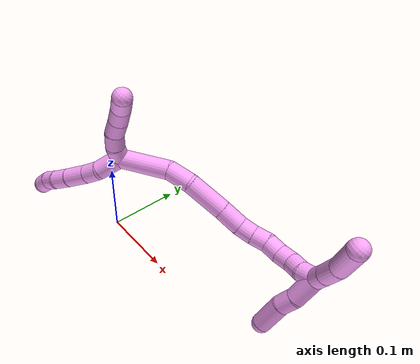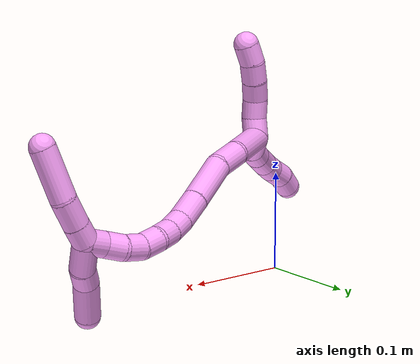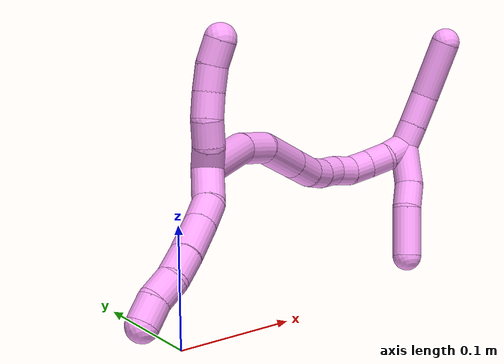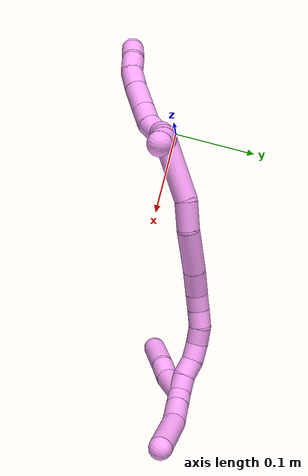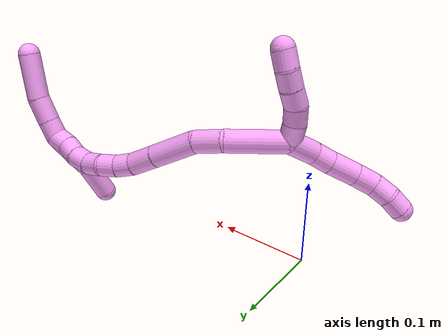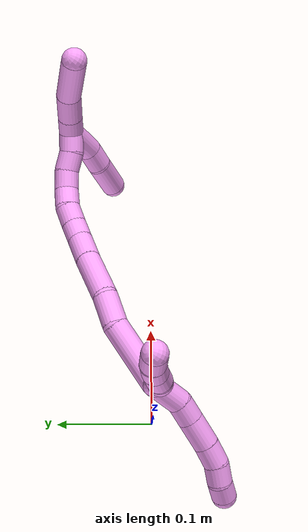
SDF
<sdf version="1.7">
 <world name="default">
  <model name="photoneo_s_sensor">
   <static>1</static>
   <pose>0 0 2 1.57079 1.57079 3.14159</pose>
   <link name="link">
    <inertial><mass>0.1</mass></inertial>
    <sensor name="sensor" type="depth">
     <update_rate>30</update_rate>
     <camera>
      <horizontal_fov>1.22</horizontal_fov>
      <image><width>1920</width><height>1200</height><format>B8G8R8</format></image>
      <clip><near>0.1</near><far>4</far></clip>
      <depth_camera><output>points</output></depth_camera>
     </camera>
     <plugin name="camera_plugin" filename="libgazebo_ros_depth_camera.so">
      <baseline>0.2</baseline>
      <alwaysOn>1</alwaysOn>
      <updateRate>0.0</updateRate>
      <cameraName>camera_ir</cameraName>
      <imageTopicName>/camera/color/image_raw</imageTopicName>
      <cameraInfoTopicName>/camera/color/camera_info</cameraInfoTopicName>
      <depthImageTopicName>/camera/depth/image_raw</depthImageTopicName>
      <depthImageCameraInfoTopicName>/camera/depth/camera_info</depthImageCameraInfoTopicName>
      <pointCloudTopicName>/camera/depth/points</pointCloudTopicName>
      <frameName>fr_optical</frameName>
      <pointCloudCutoff>0.1</pointCloudCutoff>
      <pointCloudCutoffMax>2.0</pointCloudCutoffMax>
      <distortionK1>0</distortionK1>
      <distortionK2>0</distortionK2>
      <distortionK3>0</distortionK3>
      <distortionT1>0</distortionT1>
      <distortionT2>0</distortionT2>
      <CxPrime>0</CxPrime>
      <Cx>0</Cx>
      <Cy>0</Cy>
      <focalLength>0</focalLength>
      <hackBaseline>0</hackBaseline>
     </plugin>
    </sensor>
   </link>
  </model>
  <model name="bin">
   <static>1</static>
   <link name="bottom">
    <collision name="collision-bottom">
     <pose>0 0 -0.01 0 -0 0</pose>
     <geometry><box><size>0.8 0.6 0.02</size></box></geometry>
     <surface>
      <friction><ode><mu>100</mu><mu2>100</mu2></ode></friction>
      <contact><collide_bitmask>65535</collide_bitmask></contact>
     </surface>
    </collision>
   </link>
   <link name="west_wall">
    <collision name="collision-west_wall">
     <pose>-0.41 0 0.1 0 -0 0</pose>
     <geometry><box><size>0.02 0.6 0.2</size></box></geometry>
     <surface>
      <friction><ode><mu>100</mu><mu2>100</mu2></ode></friction>
      <contact><collide_bitmask>65535</collide_bitmask></contact>
     </surface>
    </collision>
   </link>
   <link name="east_wall">
    <collision name="collision-east_wall">
     <pose>0.41 0 0.1 0 -0 0</pose>
     <geometry><box><size>0.02 0.6 0.2</size></box></geometry>
     <surface>
      <friction><ode><mu>100</mu><mu2>100</mu2></ode></friction>
      <contact><collide_bitmask>65535</collide_bitmask></contact>
     </surface>
    </collision>
   </link>
   <link name="south_wall">
    <collision name="collision-south_wall">
     <pose>0 -0.31 0.1 0 -0 0</pose>
     <geometry><box><size>0.8 0.02 0.2</size></box></geometry>
     <surface>
      <friction><ode><mu>100</mu><mu2>100</mu2></ode></friction>
      <contact><collide_bitmask>65535</collide_bitmask></contact>
     </surface>
    </collision>
   </link>
   <link name="north_wall">
    <collision name="collision-north_wall">
     <pose>0 0.31 0.1 0 -0 0</pose>
     <geometry><box><size>0.8 0.02 0.2</size></box></geometry>
     <surface>
      <friction><ode><mu>100</mu><mu2>100</mu2></ode></friction>
      <contact><collide_bitmask>65535</collide_bitmask></contact>
     </surface>
    </collision>
   </link>
  </model>
  <model name="4">
   <static>0</static>
   <link name="4">
    <collision name="collision-cylinder-e_1_2_8">
     <pose>0.003014 0.004637 0.015862 -0.284385 0.18041 -0.025896</pose>
     <geometry><cylinder><radius>0.0125</radius><length>0.033598</length></cylinder></geometry>
     <surface>
      <friction><ode><mu>1.16</mu><mu2>1.16</mu2><slip1>0</slip1><slip2>0</slip2></ode></friction>
      <contact><ode><kp>1e+06</kp><kd>1</kd><max_vel>0</max_vel><min_depth>0.001</min_depth></ode></contact>
     </surface>
    </collision>
    <visual name="visual-cylinder-e_1_2_8">
     <pose>0.003014 0.004637 0.015862 -0.284385 0.18041 -0.025896</pose>
     <geometry><cylinder><radius>0.0125</radius><length>0.033598</length></cylinder></geometry>
     <material><ambient>1 0.65098 0.996078 1</ambient></material>
    </visual>
    <collision name="collision-cylinder-e_2_8_9">
     <pose>0.006248 0.015112 0.040627 -0.580519 0.020649 -0.006168</pose>
     <geometry><cylinder><radius>0.0125</radius><length>0.021296</length></cylinder></geometry>
     <surface>
      <friction><ode><mu>1.16</mu><mu2>1.16</mu2><slip1>0</slip1><slip2>0</slip2></ode></friction>
      <contact><ode><kp>1e+06</kp><kd>1</kd><max_vel>0</max_vel><min_depth>0.001</min_depth></ode></contact>
     </surface>
    </collision>
    <visual name="visual-cylinder-e_2_8_9">
     <pose>0.006248 0.015112 0.040627 -0.580519 0.020649 -0.006168</pose>
     <geometry><cylinder><radius>0.0125</radius><length>0.021296</length></cylinder></geometry>
     <material><ambient>1 0.65098 0.996078 1</ambient></material>
    </visual>
    <collision name="collision-cylinder-e_3_9_10">
     <pose>0.007513 0.030053 0.062015 -0.629879 0.067482 -0.021992</pose>
     <geometry><cylinder><radius>0.0125</radius><length>0.030974</length></cylinder></geometry>
     <surface>
      <friction><ode><mu>1.16</mu><mu2>1.16</mu2><slip1>0</slip1><slip2>0</slip2></ode></friction>
      <contact><ode><kp>1e+06</kp><kd>1</kd><max_vel>0</max_vel><min_depth>0.001</min_depth></ode></contact>
     </surface>
    </collision>
    <visual name="visual-cylinder-e_3_9_10">
     <pose>0.007513 0.030053 0.062015 -0.629879 0.067482 -0.021992</pose>
     <geometry><cylinder><radius>0.0125</radius><length>0.030974</length></cylinder></geometry>
     <material><ambient>1 0.65098 0.996078 1</ambient></material>
    </visual>
    <collision name="collision-cylinder-e_4_10_11">
     <pose>0.008663 0.046451 0.083664 -0.6725 0.009097 -0.00318</pose>
     <geometry><cylinder><radius>0.0125</radius><length>0.023425</length></cylinder></geometry>
     <surface>
      <friction><ode><mu>1.16</mu><mu2>1.16</mu2><slip1>0</slip1><slip2>0</slip2></ode></friction>
      <contact><ode><kp>1e+06</kp><kd>1</kd><max_vel>0</max_vel><min_depth>0.001</min_depth></ode></contact>
     </surface>
    </collision>
    <visual name="visual-cylinder-e_4_10_11">
     <pose>0.008663 0.046451 0.083664 -0.6725 0.009097 -0.00318</pose>
     <geometry><cylinder><radius>0.0125</radius><length>0.023425</length></cylinder></geometry>
     <material><ambient>1 0.65098 0.996078 1</ambient></material>
    </visual>
    <collision name="collision-cylinder-e_5_11_12">
     <pose>0.006553 0.061127 0.099714 -0.819829 -0.216171 0.09423</pose>
     <geometry><cylinder><radius>0.0125</radius><length>0.020672</length></cylinder></geometry>
     <surface>
      <friction><ode><mu>1.16</mu><mu2>1.16</mu2><slip1>0</slip1><slip2>0</slip2></ode></friction>
      <contact><ode><kp>1e+06</kp><kd>1</kd><max_vel>0</max_vel><min_depth>0.001</min_depth></ode></contact>
     </surface>
    </collision>
    <visual name="visual-cylinder-e_5_11_12">
     <pose>0.006553 0.061127 0.099714 -0.819829 -0.216171 0.09423</pose>
     <geometry><cylinder><radius>0.0125</radius><length>0.020672</length></cylinder></geometry>
     <material><ambient>1 0.65098 0.996078 1</ambient></material>
    </visual>
    <collision name="collision-cylinder-e_6_12_6">
     <pose>0.00145 0.073532 0.114774 -0.551355 -0.292273 0.083224</pose>
     <geometry><cylinder><radius>0.0125</radius><length>0.020035</length></cylinder></geometry>
     <surface>
      <friction><ode><mu>1.16</mu><mu2>1.16</mu2><slip1>0</slip1><slip2>0</slip2></ode></friction>
      <contact><ode><kp>1e+06</kp><kd>1</kd><max_vel>0</max_vel><min_depth>0.001</min_depth></ode></contact>
     </surface>
    </collision>
    <visual name="visual-cylinder-e_6_12_6">
     <pose>0.00145 0.073532 0.114774 -0.551355 -0.292273 0.083224</pose>
     <geometry><cylinder><radius>0.0125</radius><length>0.020035</length></cylinder></geometry>
     <material><ambient>1 0.65098 0.996078 1</ambient></material>
    </visual>
    <collision name="collision-cylinder-e_1_2_13">
     <pose>0.008023 0.002329 -0.005497 -2.74091 0.931059 -2.3733</pose>
     <geometry><cylinder><radius>0.0125</radius><length>0.02</length></cylinder></geometry>
     <surface>
      <friction><ode><mu>1.16</mu><mu2>1.16</mu2><slip1>0</slip1><slip2>0</slip2></ode></friction>
      <contact><ode><kp>1e+06</kp><kd>1</kd><max_vel>0</max_vel><min_depth>0.001</min_depth></ode></contact>
     </surface>
    </collision>
    <visual name="visual-cylinder-e_1_2_13">
     <pose>0.008023 0.002329 -0.005497 -2.74091 0.931059 -2.3733</pose>
     <geometry><cylinder><radius>0.0125</radius><length>0.02</length></cylinder></geometry>
     <material><ambient>1 0.65098 0.996078 1</ambient></material>
    </visual>
    <collision name="collision-cylinder-e_2_13_14">
     <pose>0.022054 0.006686 -0.018725 -2.88499 0.644658 -2.40433</pose>
     <geometry><cylinder><radius>0.0125</radius><length>0.02</length></cylinder></geometry>
     <surface>
      <friction><ode><mu>1.16</mu><mu2>1.16</mu2><slip1>0</slip1><slip2>0</slip2></ode></friction>
      <contact><ode><kp>1e+06</kp><kd>1</kd><max_vel>0</max_vel><min_depth>0.001</min_depth></ode></contact>
     </surface>
    </collision>
    <visual name="visual-cylinder-e_2_13_14">
     <pose>0.022054 0.006686 -0.018725 -2.88499 0.644658 -2.40433</pose>
     <geometry><cylinder><radius>0.0125</radius><length>0.02</length></cylinder></geometry>
     <material><ambient>1 0.65098 0.996078 1</ambient></material>
    </visual>
    <collision name="collision-cylinder-e_3_14_15">
     <pose>0.032707 0.008393 -0.035307 3.1053 0.482946 2.99449</pose>
     <geometry><cylinder><radius>0.0125</radius><length>0.02</length></cylinder></geometry>
     <surface>
      <friction><ode><mu>1.16</mu><mu2>1.16</mu2><slip1>0</slip1><slip2>0</slip2></ode></friction>
      <contact><ode><kp>1e+06</kp><kd>1</kd><max_vel>0</max_vel><min_depth>0.001</min_depth></ode></contact>
     </surface>
    </collision>
    <visual name="visual-cylinder-e_3_14_15">
     <pose>0.032707 0.008393 -0.035307 3.1053 0.482946 2.99449</pose>
     <geometry><cylinder><radius>0.0125</radius><length>0.02</length></cylinder></geometry>
     <material><ambient>1 0.65098 0.996078 1</ambient></material>
    </visual>
    <collision name="collision-cylinder-e_4_15_16">
     <pose>0.042782 0.007567 -0.052539 3.08142 0.574083 2.9384</pose>
     <geometry><cylinder><radius>0.0125</radius><length>0.02</length></cylinder></geometry>
     <surface>
      <friction><ode><mu>1.16</mu><mu2>1.16</mu2><slip1>0</slip1><slip2>0</slip2></ode></friction>
      <contact><ode><kp>1e+06</kp><kd>1</kd><max_vel>0</max_vel><min_depth>0.001</min_depth></ode></contact>
     </surface>
    </collision>
    <visual name="visual-cylinder-e_4_15_16">
     <pose>0.042782 0.007567 -0.052539 3.08142 0.574083 2.9384</pose>
     <geometry><cylinder><radius>0.0125</radius><length>0.02</length></cylinder></geometry>
     <material><ambient>1 0.65098 0.996078 1</ambient></material>
    </visual>
    <collision name="collision-cylinder-e_5_16_5">
     <pose>0.054912 0.005366 -0.068149 2.91119 0.734093 2.55691</pose>
     <geometry><cylinder><radius>0.0125</radius><length>0.02</length></cylinder></geometry>
     <surface>
      <friction><ode><mu>1.16</mu><mu2>1.16</mu2><slip1>0</slip1><slip2>0</slip2></ode></friction>
      <contact><ode><kp>1e+06</kp><kd>1</kd><max_vel>0</max_vel><min_depth>0.001</min_depth></ode></contact>
     </surface>
    </collision>
    <visual name="visual-cylinder-e_5_16_5">
     <pose>0.054912 0.005366 -0.068149 2.91119 0.734093 2.55691</pose>
     <geometry><cylinder><radius>0.0125</radius><length>0.02</length></cylinder></geometry>
     <material><ambient>1 0.65098 0.996078 1</ambient></material>
    </visual>
    <collision name="collision-cylinder-e_1_2_17">
     <pose>-0.013486 -0.025603 -0.016805 2.15164 -0.414794 -0.743398</pose>
     <geometry><cylinder><radius>0.0125</radius><length>0.066926</length></cylinder></geometry>
     <surface>
      <friction><ode><mu>1.16</mu><mu2>1.16</mu2><slip1>0</slip1><slip2>0</slip2></ode></friction>
      <contact><ode><kp>1e+06</kp><kd>1</kd><max_vel>0</max_vel><min_depth>0.001</min_depth></ode></contact>
     </surface>
    </collision>
    <visual name="visual-cylinder-e_1_2_17">
     <pose>-0.013486 -0.025603 -0.016805 2.15164 -0.414794 -0.743398</pose>
     <geometry><cylinder><radius>0.0125</radius><length>0.066926</length></cylinder></geometry>
     <material><ambient>1 0.65098 0.996078 1</ambient></material>
    </visual>
    <collision name="collision-cylinder-e_2_17_18">
     <pose>-0.032314 -0.065859 -0.037377 1.82242 -0.33944 -0.435</pose>
     <geometry><cylinder><radius>0.0125</radius><length>0.032092</length></cylinder></geometry>
     <surface>
      <friction><ode><mu>1.16</mu><mu2>1.16</mu2><slip1>0</slip1><slip2>0</slip2></ode></friction>
      <contact><ode><kp>1e+06</kp><kd>1</kd><max_vel>0</max_vel><min_depth>0.001</min_depth></ode></contact>
     </surface>
    </collision>
    <visual name="visual-cylinder-e_2_17_18">
     <pose>-0.032314 -0.065859 -0.037377 1.82242 -0.33944 -0.435</pose>
     <geometry><cylinder><radius>0.0125</radius><length>0.032092</length></cylinder></geometry>
     <material><ambient>1 0.65098 0.996078 1</ambient></material>
    </visual>
    <collision name="collision-cylinder-e_3_18_19">
     <pose>-0.051213 -0.101923 -0.042 1.61072 -0.5641 -0.585813</pose>
     <geometry><cylinder><radius>0.0125</radius><length>0.05071</length></cylinder></geometry>
     <surface>
      <friction><ode><mu>1.16</mu><mu2>1.16</mu2><slip1>0</slip1><slip2>0</slip2></ode></friction>
      <contact><ode><kp>1e+06</kp><kd>1</kd><max_vel>0</max_vel><min_depth>0.001</min_depth></ode></contact>
     </surface>
    </collision>
    <visual name="visual-cylinder-e_3_18_19">
     <pose>-0.051213 -0.101923 -0.042 1.61072 -0.5641 -0.585813</pose>
     <geometry><cylinder><radius>0.0125</radius><length>0.05071</length></cylinder></geometry>
     <material><ambient>1 0.65098 0.996078 1</ambient></material>
    </visual>
    <collision name="collision-cylinder-e_4_19_20">
     <pose>-0.072324 -0.136171 -0.042867 1.57174 -0.531902 -0.532382</pose>
     <geometry><cylinder><radius>0.0125</radius><length>0.029792</length></cylinder></geometry>
     <surface>
      <friction><ode><mu>1.16</mu><mu2>1.16</mu2><slip1>0</slip1><slip2>0</slip2></ode></friction>
      <contact><ode><kp>1e+06</kp><kd>1</kd><max_vel>0</max_vel><min_depth>0.001</min_depth></ode></contact>
     </surface>
    </collision>
    <visual name="visual-cylinder-e_4_19_20">
     <pose>-0.072324 -0.136171 -0.042867 1.57174 -0.531902 -0.532382</pose>
     <geometry><cylinder><radius>0.0125</radius><length>0.029792</length></cylinder></geometry>
     <material><ambient>1 0.65098 0.996078 1</ambient></material>
    </visual>
    <collision name="collision-cylinder-e_5_20_21">
     <pose>-0.084033 -0.157945 -0.044646 1.76602 -0.427858 -0.517007</pose>
     <geometry><cylinder><radius>0.0125</radius><length>0.020024</length></cylinder></geometry>
     <surface>
      <friction><ode><mu>1.16</mu><mu2>1.16</mu2><slip1>0</slip1><slip2>0</slip2></ode></friction>
      <contact><ode><kp>1e+06</kp><kd>1</kd><max_vel>0</max_vel><min_depth>0.001</min_depth></ode></contact>
     </surface>
    </collision>
    <visual name="visual-cylinder-e_5_20_21">
     <pose>-0.084033 -0.157945 -0.044646 1.76602 -0.427858 -0.517007</pose>
     <geometry><cylinder><radius>0.0125</radius><length>0.020024</length></cylinder></geometry>
     <material><ambient>1 0.65098 0.996078 1</ambient></material>
    </visual>
    <collision name="collision-cylinder-e_6_21_22">
     <pose>-0.091176 -0.175945 -0.049625 1.91135 -0.301335 -0.423296</pose>
     <geometry><cylinder><radius>0.0125</radius><length>0.020139</length></cylinder></geometry>
     <surface>
      <friction><ode><mu>1.16</mu><mu2>1.16</mu2><slip1>0</slip1><slip2>0</slip2></ode></friction>
      <contact><ode><kp>1e+06</kp><kd>1</kd><max_vel>0</max_vel><min_depth>0.001</min_depth></ode></contact>
     </surface>
    </collision>
    <visual name="visual-cylinder-e_6_21_22">
     <pose>-0.091176 -0.175945 -0.049625 1.91135 -0.301335 -0.423296</pose>
     <geometry><cylinder><radius>0.0125</radius><length>0.020139</length></cylinder></geometry>
     <material><ambient>1 0.65098 0.996078 1</ambient></material>
    </visual>
    <collision name="collision-cylinder-e_7_22_23">
     <pose>-0.095686 -0.194878 -0.053877 1.67585 -0.152177 -0.16899</pose>
     <geometry><cylinder><radius>0.0125</radius><length>0.020079</length></cylinder></geometry>
     <surface>
      <friction><ode><mu>1.16</mu><mu2>1.16</mu2><slip1>0</slip1><slip2>0</slip2></ode></friction>
      <contact><ode><kp>1e+06</kp><kd>1</kd><max_vel>0</max_vel><min_depth>0.001</min_depth></ode></contact>
     </surface>
    </collision>
    <visual name="visual-cylinder-e_7_22_23">
     <pose>-0.095686 -0.194878 -0.053877 1.67585 -0.152177 -0.16899</pose>
     <geometry><cylinder><radius>0.0125</radius><length>0.020079</length></cylinder></geometry>
     <material><ambient>1 0.65098 0.996078 1</ambient></material>
    </visual>
    <collision name="collision-cylinder-e_8_23_24">
     <pose>-0.09599 -0.214279 -0.057779 1.8624 0.121757 0.163508</pose>
     <geometry><cylinder><radius>0.0125</radius><length>0.020054</length></cylinder></geometry>
     <surface>
      <friction><ode><mu>1.16</mu><mu2>1.16</mu2><slip1>0</slip1><slip2>0</slip2></ode></friction>
      <contact><ode><kp>1e+06</kp><kd>1</kd><max_vel>0</max_vel><min_depth>0.001</min_depth></ode></contact>
     </surface>
    </collision>
    <visual name="visual-cylinder-e_8_23_24">
     <pose>-0.09599 -0.214279 -0.057779 1.8624 0.121757 0.163508</pose>
     <geometry><cylinder><radius>0.0125</radius><length>0.020054</length></cylinder></geometry>
     <material><ambient>1 0.65098 0.996078 1</ambient></material>
    </visual>
    <collision name="collision-cylinder-e_9_24_25">
     <pose>-0.09072 -0.232697 -0.062896 1.81935 0.416237 0.530163</pose>
     <geometry><cylinder><radius>0.0125</radius><length>0.020045</length></cylinder></geometry>
     <surface>
      <friction><ode><mu>1.16</mu><mu2>1.16</mu2><slip1>0</slip1><slip2>0</slip2></ode></friction>
      <contact><ode><kp>1e+06</kp><kd>1</kd><max_vel>0</max_vel><min_depth>0.001</min_depth></ode></contact>
     </surface>
    </collision>
    <visual name="visual-cylinder-e_9_24_25">
     <pose>-0.09072 -0.232697 -0.062896 1.81935 0.416237 0.530163</pose>
     <geometry><cylinder><radius>0.0125</radius><length>0.020045</length></cylinder></geometry>
     <material><ambient>1 0.65098 0.996078 1</ambient></material>
    </visual>
    <collision name="collision-cylinder-e_10_25_1">
     <pose>-0.084514 -0.250523 -0.069251 2.00081 0.215526 0.334127</pose>
     <geometry><cylinder><radius>0.0125</radius><length>0.020138</length></cylinder></geometry>
     <surface>
      <friction><ode><mu>1.16</mu><mu2>1.16</mu2><slip1>0</slip1><slip2>0</slip2></ode></friction>
      <contact><ode><kp>1e+06</kp><kd>1</kd><max_vel>0</max_vel><min_depth>0.001</min_depth></ode></contact>
     </surface>
    </collision>
    <visual name="visual-cylinder-e_10_25_1">
     <pose>-0.084514 -0.250523 -0.069251 2.00081 0.215526 0.334127</pose>
     <geometry><cylinder><radius>0.0125</radius><length>0.020138</length></cylinder></geometry>
     <material><ambient>1 0.65098 0.996078 1</ambient></material>
    </visual>
    <collision name="collision-cylinder-e_1_1_26">
     <pose>-0.076518 -0.262899 -0.081083 2.72348 0.604459 1.94661</pose>
     <geometry><cylinder><radius>0.0125</radius><length>0.020564</length></cylinder></geometry>
     <surface>
      <friction><ode><mu>1.16</mu><mu2>1.16</mu2><slip1>0</slip1><slip2>0</slip2></ode></friction>
      <contact><ode><kp>1e+06</kp><kd>1</kd><max_vel>0</max_vel><min_depth>0.001</min_depth></ode></contact>
     </surface>
    </collision>
    <visual name="visual-cylinder-e_1_1_26">
     <pose>-0.076518 -0.262899 -0.081083 2.72348 0.604459 1.94661</pose>
     <geometry><cylinder><radius>0.0125</radius><length>0.020564</length></cylinder></geometry>
     <material><ambient>1 0.65098 0.996078 1</ambient></material>
    </visual>
    <collision name="collision-cylinder-e_2_26_27">
     <pose>-0.062377 -0.270563 -0.099534 2.76581 0.624048 2.07634</pose>
     <geometry><cylinder><radius>0.0125</radius><length>0.0284</length></cylinder></geometry>
     <surface>
      <friction><ode><mu>1.16</mu><mu2>1.16</mu2><slip1>0</slip1><slip2>0</slip2></ode></friction>
      <contact><ode><kp>1e+06</kp><kd>1</kd><max_vel>0</max_vel><min_depth>0.001</min_depth></ode></contact>
     </surface>
    </collision>
    <visual name="visual-cylinder-e_2_26_27">
     <pose>-0.062377 -0.270563 -0.099534 2.76581 0.624048 2.07634</pose>
     <geometry><cylinder><radius>0.0125</radius><length>0.0284</length></cylinder></geometry>
     <material><ambient>1 0.65098 0.996078 1</ambient></material>
    </visual>
    <collision name="collision-cylinder-e_3_27_4">
     <pose>-0.035338 -0.278708 -0.127123 2.91347 0.824849 2.62941</pose>
     <geometry><cylinder><radius>0.0125</radius><length>0.051036</length></cylinder></geometry>
     <surface>
      <friction><ode><mu>1.16</mu><mu2>1.16</mu2><slip1>0</slip1><slip2>0</slip2></ode></friction>
      <contact><ode><kp>1e+06</kp><kd>1</kd><max_vel>0</max_vel><min_depth>0.001</min_depth></ode></contact>
     </surface>
    </collision>
    <visual name="visual-cylinder-e_3_27_4">
     <pose>-0.035338 -0.278708 -0.127123 2.91347 0.824849 2.62941</pose>
     <geometry><cylinder><radius>0.0125</radius><length>0.051036</length></cylinder></geometry>
     <material><ambient>1 0.65098 0.996078 1</ambient></material>
    </visual>
    <collision name="collision-cylinder-e_1_1_28">
     <pose>-0.085502 -0.259081 -0.055839 -0.021847 -0.177437 0.001943</pose>
     <geometry><cylinder><radius>0.0125</radius><length>0.035592</length></cylinder></geometry>
     <surface>
      <friction><ode><mu>1.16</mu><mu2>1.16</mu2><slip1>0</slip1><slip2>0</slip2></ode></friction>
      <contact><ode><kp>1e+06</kp><kd>1</kd><max_vel>0</max_vel><min_depth>0.001</min_depth></ode></contact>
     </surface>
    </collision>
    <visual name="visual-cylinder-e_1_1_28">
     <pose>-0.085502 -0.259081 -0.055839 -0.021847 -0.177437 0.001943</pose>
     <geometry><cylinder><radius>0.0125</radius><length>0.035592</length></cylinder></geometry>
     <material><ambient>1 0.65098 0.996078 1</ambient></material>
    </visual>
    <collision name="collision-cylinder-e_2_28_29">
     <pose>-0.090792 -0.255688 -0.027894 -0.280925 -0.19534 0.027706</pose>
     <geometry><cylinder><radius>0.0125</radius><length>0.022138</length></cylinder></geometry>
     <surface>
      <friction><ode><mu>1.16</mu><mu2>1.16</mu2><slip1>0</slip1><slip2>0</slip2></ode></friction>
      <contact><ode><kp>1e+06</kp><kd>1</kd><max_vel>0</max_vel><min_depth>0.001</min_depth></ode></contact>
     </surface>
    </collision>
    <visual name="visual-cylinder-e_2_28_29">
     <pose>-0.090792 -0.255688 -0.027894 -0.280925 -0.19534 0.027706</pose>
     <geometry><cylinder><radius>0.0125</radius><length>0.022138</length></cylinder></geometry>
     <material><ambient>1 0.65098 0.996078 1</ambient></material>
    </visual>
    <collision name="collision-cylinder-e_3_29_3">
     <pose>-0.099827 -0.251215 0.002467 -0.073242 -0.331912 0.012273</pose>
     <geometry><cylinder><radius>0.0125</radius><length>0.04227</length></cylinder></geometry>
     <surface>
      <friction><ode><mu>1.16</mu><mu2>1.16</mu2><slip1>0</slip1><slip2>0</slip2></ode></friction>
      <contact><ode><kp>1e+06</kp><kd>1</kd><max_vel>0</max_vel><min_depth>0.001</min_depth></ode></contact>
     </surface>
    </collision>
    <visual name="visual-cylinder-e_3_29_3">
     <pose>-0.099827 -0.251215 0.002467 -0.073242 -0.331912 0.012273</pose>
     <geometry><cylinder><radius>0.0125</radius><length>0.04227</length></cylinder></geometry>
     <material><ambient>1 0.65098 0.996078 1</ambient></material>
    </visual>
    <collision name="collision-sphere-3">
     <pose>-0.106714 -0.249753 0.022394 0 -0 0</pose>
     <geometry><sphere><radius>0.0125</radius></sphere></geometry>
     <surface>
      <friction><ode><mu>1.16</mu><mu2>1.16</mu2><slip1>0</slip1><slip2>0</slip2></ode></friction>
      <contact><ode><kp>1e+06</kp><kd>1</kd><max_vel>0</max_vel><min_depth>0.001</min_depth></ode></contact>
     </surface>
    </collision>
    <visual name="visual-sphere-3">
     <pose>-0.106714 -0.249753 0.022394 0 -0 0</pose>
     <geometry><sphere><radius>0.0125</radius></sphere></geometry>
     <material><ambient>1 0.65098 0.996078 1</ambient></material>
    </visual>
    <collision name="collision-sphere-29">
     <pose>-0.09294 -0.252677 -0.017461 0 -0 0</pose>
     <geometry><sphere><radius>0.0125</radius></sphere></geometry>
     <surface>
      <friction><ode><mu>1.16</mu><mu2>1.16</mu2><slip1>0</slip1><slip2>0</slip2></ode></friction>
      <contact><ode><kp>1e+06</kp><kd>1</kd><max_vel>0</max_vel><min_depth>0.001</min_depth></ode></contact>
     </surface>
    </collision>
    <visual name="visual-sphere-29">
     <pose>-0.09294 -0.252677 -0.017461 0 -0 0</pose>
     <geometry><sphere><radius>0.0125</radius></sphere></geometry>
     <material><ambient>1 0.65098 0.996078 1</ambient></material>
    </visual>
    <collision name="collision-sphere-28">
     <pose>-0.088643 -0.258698 -0.038327 0 -0 0</pose>
     <geometry><sphere><radius>0.0125</radius></sphere></geometry>
     <surface>
      <friction><ode><mu>1.16</mu><mu2>1.16</mu2><slip1>0</slip1><slip2>0</slip2></ode></friction>
      <contact><ode><kp>1e+06</kp><kd>1</kd><max_vel>0</max_vel><min_depth>0.001</min_depth></ode></contact>
     </surface>
    </collision>
    <visual name="visual-sphere-28">
     <pose>-0.088643 -0.258698 -0.038327 0 -0 0</pose>
     <geometry><sphere><radius>0.0125</radius></sphere></geometry>
     <material><ambient>1 0.65098 0.996078 1</ambient></material>
    </visual>
    <collision name="collision-sphere-4">
     <pose>-0.016596 -0.282625 -0.143993 0 -0 0</pose>
     <geometry><sphere><radius>0.0125</radius></sphere></geometry>
     <surface>
      <friction><ode><mu>1.16</mu><mu2>1.16</mu2><slip1>0</slip1><slip2>0</slip2></ode></friction>
      <contact><ode><kp>1e+06</kp><kd>1</kd><max_vel>0</max_vel><min_depth>0.001</min_depth></ode></contact>
     </surface>
    </collision>
    <visual name="visual-sphere-4">
     <pose>-0.016596 -0.282625 -0.143993 0 -0 0</pose>
     <geometry><sphere><radius>0.0125</radius></sphere></geometry>
     <material><ambient>1 0.65098 0.996078 1</ambient></material>
    </visual>
    <collision name="collision-sphere-27">
     <pose>-0.05408 -0.274792 -0.110253 0 -0 0</pose>
     <geometry><sphere><radius>0.0125</radius></sphere></geometry>
     <surface>
      <friction><ode><mu>1.16</mu><mu2>1.16</mu2><slip1>0</slip1><slip2>0</slip2></ode></friction>
      <contact><ode><kp>1e+06</kp><kd>1</kd><max_vel>0</max_vel><min_depth>0.001</min_depth></ode></contact>
     </surface>
    </collision>
    <visual name="visual-sphere-27">
     <pose>-0.05408 -0.274792 -0.110253 0 -0 0</pose>
     <geometry><sphere><radius>0.0125</radius></sphere></geometry>
     <material><ambient>1 0.65098 0.996078 1</ambient></material>
    </visual>
    <collision name="collision-sphere-26">
     <pose>-0.070674 -0.266334 -0.088815 0 -0 0</pose>
     <geometry><sphere><radius>0.0125</radius></sphere></geometry>
     <surface>
      <friction><ode><mu>1.16</mu><mu2>1.16</mu2><slip1>0</slip1><slip2>0</slip2></ode></friction>
      <contact><ode><kp>1e+06</kp><kd>1</kd><max_vel>0</max_vel><min_depth>0.001</min_depth></ode></contact>
     </surface>
    </collision>
    <visual name="visual-sphere-26">
     <pose>-0.070674 -0.266334 -0.088815 0 -0 0</pose>
     <geometry><sphere><radius>0.0125</radius></sphere></geometry>
     <material><ambient>1 0.65098 0.996078 1</ambient></material>
    </visual>
    <collision name="collision-sphere-1">
     <pose>-0.082361 -0.259464 -0.073352 0 -0 0</pose>
     <geometry><sphere><radius>0.0125</radius></sphere></geometry>
     <surface>
      <friction><ode><mu>1.16</mu><mu2>1.16</mu2><slip1>0</slip1><slip2>0</slip2></ode></friction>
      <contact><ode><kp>1e+06</kp><kd>1</kd><max_vel>0</max_vel><min_depth>0.001</min_depth></ode></contact>
     </surface>
    </collision>
    <visual name="visual-sphere-1">
     <pose>-0.082361 -0.259464 -0.073352 0 -0 0</pose>
     <geometry><sphere><radius>0.0125</radius></sphere></geometry>
     <material><ambient>1 0.65098 0.996078 1</ambient></material>
    </visual>
    <collision name="collision-sphere-25">
     <pose>-0.086668 -0.241582 -0.065151 0 -0 0</pose>
     <geometry><sphere><radius>0.0125</radius></sphere></geometry>
     <surface>
      <friction><ode><mu>1.16</mu><mu2>1.16</mu2><slip1>0</slip1><slip2>0</slip2></ode></friction>
      <contact><ode><kp>1e+06</kp><kd>1</kd><max_vel>0</max_vel><min_depth>0.001</min_depth></ode></contact>
     </surface>
    </collision>
    <visual name="visual-sphere-25">
     <pose>-0.086668 -0.241582 -0.065151 0 -0 0</pose>
     <geometry><sphere><radius>0.0125</radius></sphere></geometry>
     <material><ambient>1 0.65098 0.996078 1</ambient></material>
    </visual>
    <collision name="collision-sphere-24">
     <pose>-0.094773 -0.223812 -0.060641 0 -0 0</pose>
     <geometry><sphere><radius>0.0125</radius></sphere></geometry>
     <surface>
      <friction><ode><mu>1.16</mu><mu2>1.16</mu2><slip1>0</slip1><slip2>0</slip2></ode></friction>
      <contact><ode><kp>1e+06</kp><kd>1</kd><max_vel>0</max_vel><min_depth>0.001</min_depth></ode></contact>
     </surface>
    </collision>
    <visual name="visual-sphere-24">
     <pose>-0.094773 -0.223812 -0.060641 0 -0 0</pose>
     <geometry><sphere><radius>0.0125</radius></sphere></geometry>
     <material><ambient>1 0.65098 0.996078 1</ambient></material>
    </visual>
    <collision name="collision-sphere-23">
     <pose>-0.097208 -0.204747 -0.054918 0 -0 0</pose>
     <geometry><sphere><radius>0.0125</radius></sphere></geometry>
     <surface>
      <friction><ode><mu>1.16</mu><mu2>1.16</mu2><slip1>0</slip1><slip2>0</slip2></ode></friction>
      <contact><ode><kp>1e+06</kp><kd>1</kd><max_vel>0</max_vel><min_depth>0.001</min_depth></ode></contact>
     </surface>
    </collision>
    <visual name="visual-sphere-23">
     <pose>-0.097208 -0.204747 -0.054918 0 -0 0</pose>
     <geometry><sphere><radius>0.0125</radius></sphere></geometry>
     <material><ambient>1 0.65098 0.996078 1</ambient></material>
    </visual>
    <collision name="collision-sphere-22">
     <pose>-0.094164 -0.185009 -0.052837 0 -0 0</pose>
     <geometry><sphere><radius>0.0125</radius></sphere></geometry>
     <surface>
      <friction><ode><mu>1.16</mu><mu2>1.16</mu2><slip1>0</slip1><slip2>0</slip2></ode></friction>
      <contact><ode><kp>1e+06</kp><kd>1</kd><max_vel>0</max_vel><min_depth>0.001</min_depth></ode></contact>
     </surface>
    </collision>
    <visual name="visual-sphere-22">
     <pose>-0.094164 -0.185009 -0.052837 0 -0 0</pose>
     <geometry><sphere><radius>0.0125</radius></sphere></geometry>
     <material><ambient>1 0.65098 0.996078 1</ambient></material>
    </visual>
    <collision name="collision-sphere-21">
     <pose>-0.088187 -0.166882 -0.046413 0 -0 0</pose>
     <geometry><sphere><radius>0.0125</radius></sphere></geometry>
     <surface>
      <friction><ode><mu>1.16</mu><mu2>1.16</mu2><slip1>0</slip1><slip2>0</slip2></ode></friction>
      <contact><ode><kp>1e+06</kp><kd>1</kd><max_vel>0</max_vel><min_depth>0.001</min_depth></ode></contact>
     </surface>
    </collision>
    <visual name="visual-sphere-21">
     <pose>-0.088187 -0.166882 -0.046413 0 -0 0</pose>
     <geometry><sphere><radius>0.0125</radius></sphere></geometry>
     <material><ambient>1 0.65098 0.996078 1</ambient></material>
    </visual>
    <collision name="collision-sphere-12">
     <pose>0.004336 0.068507 0.106603 0 -0 0</pose>
     <geometry><sphere><radius>0.0125</radius></sphere></geometry>
     <surface>
      <friction><ode><mu>1.16</mu><mu2>1.16</mu2><slip1>0</slip1><slip2>0</slip2></ode></friction>
      <contact><ode><kp>1e+06</kp><kd>1</kd><max_vel>0</max_vel><min_depth>0.001</min_depth></ode></contact>
     </surface>
    </collision>
    <visual name="visual-sphere-12">
     <pose>0.004336 0.068507 0.106603 0 -0 0</pose>
     <geometry><sphere><radius>0.0125</radius></sphere></geometry>
     <material><ambient>1 0.65098 0.996078 1</ambient></material>
    </visual>
    <collision name="collision-sphere-11">
     <pose>0.00877 0.053746 0.092825 0 -0 0</pose>
     <geometry><sphere><radius>0.0125</radius></sphere></geometry>
     <surface>
      <friction><ode><mu>1.16</mu><mu2>1.16</mu2><slip1>0</slip1><slip2>0</slip2></ode></friction>
      <contact><ode><kp>1e+06</kp><kd>1</kd><max_vel>0</max_vel><min_depth>0.001</min_depth></ode></contact>
     </surface>
    </collision>
    <visual name="visual-sphere-11">
     <pose>0.00877 0.053746 0.092825 0 -0 0</pose>
     <geometry><sphere><radius>0.0125</radius></sphere></geometry>
     <material><ambient>1 0.65098 0.996078 1</ambient></material>
    </visual>
    <collision name="collision-sphere-10">
     <pose>0.008557 0.039155 0.074502 0 -0 0</pose>
     <geometry><sphere><radius>0.0125</radius></sphere></geometry>
     <surface>
      <friction><ode><mu>1.16</mu><mu2>1.16</mu2><slip1>0</slip1><slip2>0</slip2></ode></friction>
      <contact><ode><kp>1e+06</kp><kd>1</kd><max_vel>0</max_vel><min_depth>0.001</min_depth></ode></contact>
     </surface>
    </collision>
    <visual name="visual-sphere-10">
     <pose>0.008557 0.039155 0.074502 0 -0 0</pose>
     <geometry><sphere><radius>0.0125</radius></sphere></geometry>
     <material><ambient>1 0.65098 0.996078 1</ambient></material>
    </visual>
    <collision name="collision-sphere-9">
     <pose>0.006468 0.020951 0.049528 0 -0 0</pose>
     <geometry><sphere><radius>0.0125</radius></sphere></geometry>
     <surface>
      <friction><ode><mu>1.16</mu><mu2>1.16</mu2><slip1>0</slip1><slip2>0</slip2></ode></friction>
      <contact><ode><kp>1e+06</kp><kd>1</kd><max_vel>0</max_vel><min_depth>0.001</min_depth></ode></contact>
     </surface>
    </collision>
    <visual name="visual-sphere-9">
     <pose>0.006468 0.020951 0.049528 0 -0 0</pose>
     <geometry><sphere><radius>0.0125</radius></sphere></geometry>
     <material><ambient>1 0.65098 0.996078 1</ambient></material>
    </visual>
    <collision name="collision-sphere-2">
     <geometry><sphere><radius>0.0125</radius></sphere></geometry>
     <surface>
      <friction><ode><mu>1.16</mu><mu2>1.16</mu2><slip1>0</slip1><slip2>0</slip2></ode></friction>
      <contact><ode><kp>1e+06</kp><kd>1</kd><max_vel>0</max_vel><min_depth>0.001</min_depth></ode></contact>
     </surface>
    </collision>
    <visual name="visual-sphere-2">
     <geometry><sphere><radius>0.0125</radius></sphere></geometry>
     <material><ambient>1 0.65098 0.996078 1</ambient></material>
    </visual>
    <collision name="collision-sphere-19">
     <pose>-0.064769 -0.123333 -0.042855 0 -0 0</pose>
     <geometry><sphere><radius>0.0125</radius></sphere></geometry>
     <surface>
      <friction><ode><mu>1.16</mu><mu2>1.16</mu2><slip1>0</slip1><slip2>0</slip2></ode></friction>
      <contact><ode><kp>1e+06</kp><kd>1</kd><max_vel>0</max_vel><min_depth>0.001</min_depth></ode></contact>
     </surface>
    </collision>
    <visual name="visual-sphere-19">
     <pose>-0.064769 -0.123333 -0.042855 0 -0 0</pose>
     <geometry><sphere><radius>0.0125</radius></sphere></geometry>
     <material><ambient>1 0.65098 0.996078 1</ambient></material>
    </visual>
    <collision name="collision-sphere-8">
     <pose>0.006029 0.009273 0.031725 0 -0 0</pose>
     <geometry><sphere><radius>0.0125</radius></sphere></geometry>
     <surface>
      <friction><ode><mu>1.16</mu><mu2>1.16</mu2><slip1>0</slip1><slip2>0</slip2></ode></friction>
      <contact><ode><kp>1e+06</kp><kd>1</kd><max_vel>0</max_vel><min_depth>0.001</min_depth></ode></contact>
     </surface>
    </collision>
    <visual name="visual-sphere-8">
     <pose>0.006029 0.009273 0.031725 0 -0 0</pose>
     <geometry><sphere><radius>0.0125</radius></sphere></geometry>
     <material><ambient>1 0.65098 0.996078 1</ambient></material>
    </visual>
    <collision name="collision-sphere-6">
     <pose>-0.001437 0.078557 0.122945 0 -0 0</pose>
     <geometry><sphere><radius>0.0125</radius></sphere></geometry>
     <surface>
      <friction><ode><mu>1.16</mu><mu2>1.16</mu2><slip1>0</slip1><slip2>0</slip2></ode></friction>
      <contact><ode><kp>1e+06</kp><kd>1</kd><max_vel>0</max_vel><min_depth>0.001</min_depth></ode></contact>
     </surface>
    </collision>
    <visual name="visual-sphere-6">
     <pose>-0.001437 0.078557 0.122945 0 -0 0</pose>
     <geometry><sphere><radius>0.0125</radius></sphere></geometry>
     <material><ambient>1 0.65098 0.996078 1</ambient></material>
    </visual>
    <collision name="collision-sphere-13">
     <pose>0.016045 0.004657 -0.010994 0 -0 0</pose>
     <geometry><sphere><radius>0.0125</radius></sphere></geometry>
     <surface>
      <friction><ode><mu>1.16</mu><mu2>1.16</mu2><slip1>0</slip1><slip2>0</slip2></ode></friction>
      <contact><ode><kp>1e+06</kp><kd>1</kd><max_vel>0</max_vel><min_depth>0.001</min_depth></ode></contact>
     </surface>
    </collision>
    <visual name="visual-sphere-13">
     <pose>0.016045 0.004657 -0.010994 0 -0 0</pose>
     <geometry><sphere><radius>0.0125</radius></sphere></geometry>
     <material><ambient>1 0.65098 0.996078 1</ambient></material>
    </visual>
    <collision name="collision-sphere-14">
     <pose>0.028064 0.008714 -0.026457 0 -0 0</pose>
     <geometry><sphere><radius>0.0125</radius></sphere></geometry>
     <surface>
      <friction><ode><mu>1.16</mu><mu2>1.16</mu2><slip1>0</slip1><slip2>0</slip2></ode></friction>
      <contact><ode><kp>1e+06</kp><kd>1</kd><max_vel>0</max_vel><min_depth>0.001</min_depth></ode></contact>
     </surface>
    </collision>
    <visual name="visual-sphere-14">
     <pose>0.028064 0.008714 -0.026457 0 -0 0</pose>
     <geometry><sphere><radius>0.0125</radius></sphere></geometry>
     <material><ambient>1 0.65098 0.996078 1</ambient></material>
    </visual>
    <collision name="collision-sphere-15">
     <pose>0.037351 0.008072 -0.044158 0 -0 0</pose>
     <geometry><sphere><radius>0.0125</radius></sphere></geometry>
     <surface>
      <friction><ode><mu>1.16</mu><mu2>1.16</mu2><slip1>0</slip1><slip2>0</slip2></ode></friction>
      <contact><ode><kp>1e+06</kp><kd>1</kd><max_vel>0</max_vel><min_depth>0.001</min_depth></ode></contact>
     </surface>
    </collision>
    <visual name="visual-sphere-15">
     <pose>0.037351 0.008072 -0.044158 0 -0 0</pose>
     <geometry><sphere><radius>0.0125</radius></sphere></geometry>
     <material><ambient>1 0.65098 0.996078 1</ambient></material>
    </visual>
    <collision name="collision-sphere-16">
     <pose>0.048213 0.007062 -0.060921 0 -0 0</pose>
     <geometry><sphere><radius>0.0125</radius></sphere></geometry>
     <surface>
      <friction><ode><mu>1.16</mu><mu2>1.16</mu2><slip1>0</slip1><slip2>0</slip2></ode></friction>
      <contact><ode><kp>1e+06</kp><kd>1</kd><max_vel>0</max_vel><min_depth>0.001</min_depth></ode></contact>
     </surface>
    </collision>
    <visual name="visual-sphere-16">
     <pose>0.048213 0.007062 -0.060921 0 -0 0</pose>
     <geometry><sphere><radius>0.0125</radius></sphere></geometry>
     <material><ambient>1 0.65098 0.996078 1</ambient></material>
    </visual>
    <collision name="collision-sphere-5">
     <pose>0.061611 0.003671 -0.075377 0 -0 0</pose>
     <geometry><sphere><radius>0.0125</radius></sphere></geometry>
     <surface>
      <friction><ode><mu>1.16</mu><mu2>1.16</mu2><slip1>0</slip1><slip2>0</slip2></ode></friction>
      <contact><ode><kp>1e+06</kp><kd>1</kd><max_vel>0</max_vel><min_depth>0.001</min_depth></ode></contact>
     </surface>
    </collision>
    <visual name="visual-sphere-5">
     <pose>0.061611 0.003671 -0.075377 0 -0 0</pose>
     <geometry><sphere><radius>0.0125</radius></sphere></geometry>
     <material><ambient>1 0.65098 0.996078 1</ambient></material>
    </visual>
    <collision name="collision-sphere-17">
     <pose>-0.026971 -0.051205 -0.03361 0 -0 0</pose>
     <geometry><sphere><radius>0.0125</radius></sphere></geometry>
     <surface>
      <friction><ode><mu>1.16</mu><mu2>1.16</mu2><slip1>0</slip1><slip2>0</slip2></ode></friction>
      <contact><ode><kp>1e+06</kp><kd>1</kd><max_vel>0</max_vel><min_depth>0.001</min_depth></ode></contact>
     </surface>
    </collision>
    <visual name="visual-sphere-17">
     <pose>-0.026971 -0.051205 -0.03361 0 -0 0</pose>
     <geometry><sphere><radius>0.0125</radius></sphere></geometry>
     <material><ambient>1 0.65098 0.996078 1</ambient></material>
    </visual>
    <collision name="collision-sphere-18">
     <pose>-0.037657 -0.080513 -0.041144 0 -0 0</pose>
     <geometry><sphere><radius>0.0125</radius></sphere></geometry>
     <surface>
      <friction><ode><mu>1.16</mu><mu2>1.16</mu2><slip1>0</slip1><slip2>0</slip2></ode></friction>
      <contact><ode><kp>1e+06</kp><kd>1</kd><max_vel>0</max_vel><min_depth>0.001</min_depth></ode></contact>
     </surface>
    </collision>
    <visual name="visual-sphere-18">
     <pose>-0.037657 -0.080513 -0.041144 0 -0 0</pose>
     <geometry><sphere><radius>0.0125</radius></sphere></geometry>
     <material><ambient>1 0.65098 0.996078 1</ambient></material>
    </visual>
    <collision name="collision-sphere-20">
     <pose>-0.079879 -0.149009 -0.042879 0 -0 0</pose>
     <geometry><sphere><radius>0.0125</radius></sphere></geometry>
     <surface>
      <friction><ode><mu>1.16</mu><mu2>1.16</mu2><slip1>0</slip1><slip2>0</slip2></ode></friction>
      <contact><ode><kp>1e+06</kp><kd>1</kd><max_vel>0</max_vel><min_depth>0.001</min_depth></ode></contact>
     </surface>
    </collision>
    <visual name="visual-sphere-20">
     <pose>-0.079879 -0.149009 -0.042879 0 -0 0</pose>
     <geometry><sphere><radius>0.0125</radius></sphere></geometry>
     <material><ambient>1 0.65098 0.996078 1</ambient></material>
    </visual>
    <inertial>
     <pose>-0.037272 -0.112871 -0.026624 0 -0 0</pose>
     <mass>0.75</mass>
     <inertia><ixx>3.9e-05</ixx><ixy>0</ixy><ixz>0</ixz><iyy>1.3e-05</iyy><iyz>0</iyz><izz>4.9e-05</izz></inertia>
    </inertial>
   </link>
   <pose>0.026069 -0.000686 0.139417 2.90441 -0.700448 -1.52051</pose>
  </model>
 </world>
</sdf>
